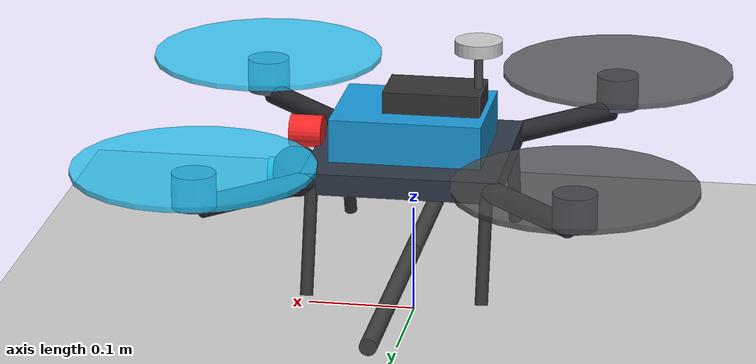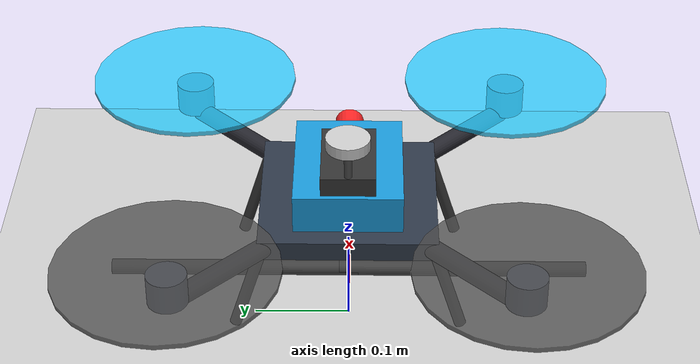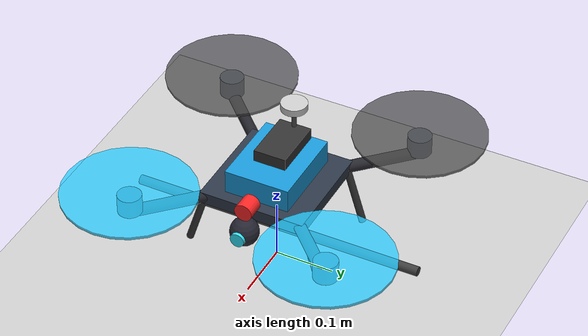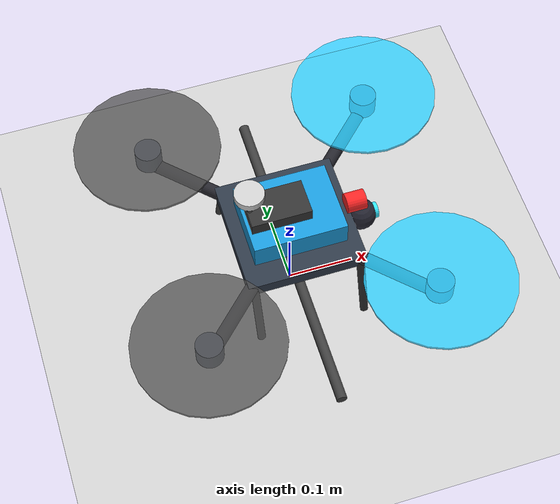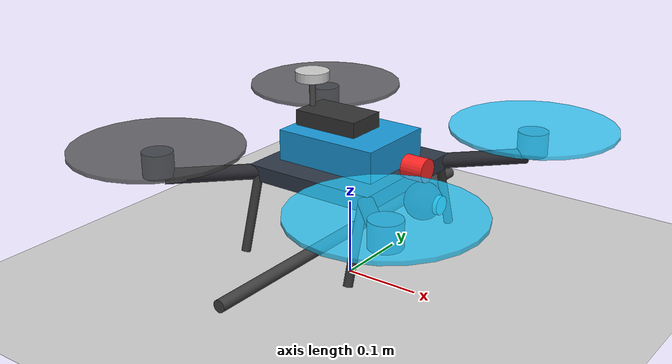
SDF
<?xml version="1.0" ?>
<sdf version="1.6">
  <world name="quadrotor_test_world">
    <!-- Scene lighting -->
    <light type="directional" name="sun">
      <cast_shadows>true</cast_shadows>
      <pose>0 0 10 0 0 0</pose>
      <diffuse>0.8 0.8 0.8 1</diffuse>
      <specular>0.2 0.2 0.2 1</specular>
      <attenuation>
        <range>1000</range>
        <constant>0.9</constant>
        <linear>0.01</linear>
        <quadratic>0.001</quadratic>
      </attenuation>
      <direction>-0.5 0.1 -0.9</direction>
    </light>

    <!-- Ground Plane -->
    <model name="ground_plane">
      <static>true</static>
      <link name="link">
        <collision name="collision">
          <geometry>
            <plane>
              <normal>0 0 1</normal>
              <size>100 100</size>
            </plane>
          </geometry>
          <surface>
            <friction>
              <ode>
                <mu>100</mu>
                <mu2>50</mu2>
              </ode>
            </friction>
          </surface>
        </collision>
        <visual name="visual">
          <cast_shadows>false</cast_shadows>
          <geometry>
            <plane>
              <normal>0 0 1</normal>
              <size>100 100</size>
            </plane>
          </geometry>
          <material>
            <script>
              <uri>file://media/materials/scripts/gazebo.material</uri>
              <name>Gazebo/Grey</name>
            </script>
          </material>
        </visual>
      </link>
    </model>

    <!-- Physics Configuration -->
    <physics type="ode">
      <max_step_size>0.001</max_step_size>
      <real_time_factor>1.0</real_time_factor>
      <real_time_update_rate>1000</real_time_update_rate>
      <gravity>0 0 -9.81</gravity>
    </physics>

    <!-- Airfield / Simulation Coordinates: Lat 16.5062, Lon 80.6480, Alt 25m -->
    <spherical_coordinates>
      <surface_model>EARTH_WGS84</surface_model>
      <latitude_deg>16.5062</latitude_deg>
      <longitude_deg>80.6480</longitude_deg>
      <elevation>25.0</elevation>
      <heading_deg>0</heading_deg>
    </spherical_coordinates>

    <!-- Embedded High-Fidelity 3D Quadrotor Model -->
    <model name="quadrotor">
      <pose>0 0 0.15 0 0 0</pose>
      <static>false</static>

      <!-- Main Drone Link -->
      <link name="base_link">
        <inertial>
          <mass>1.45</mass>
          <inertia>
            <ixx>0.025</ixx>
            <ixy>0</ixy>
            <ixz>0</ixz>
            <iyy>0.025</iyy>
            <iyz>0</iyz>
            <izz>0.045</izz>
          </inertia>
        </inertial>

        <!-- Collision Hull: Center Body + Landing Skids -->
        <collision name="body_collision">
          <pose>0 0 0 0 0 0</pose>
          <geometry>
            <box>
              <size>0.24 0.24 0.08</size>
            </box>
          </geometry>
        </collision>

        <collision name="landing_gear_collision">
          <pose>0 0 -0.08 0 0 0</pose>
          <geometry>
            <box>
              <size>0.28 0.28 0.04</size>
            </box>
          </geometry>
        </collision>

        <!-- 1. Central Fuselage / Lower Chassis Plate -->
        <visual name="chassis_plate_visual">
          <pose>0 0 0 0 0 0</pose>
          <geometry>
            <box>
              <size>0.18 0.18 0.02</size>
            </box>
          </geometry>
          <material>
            <ambient>0.12 0.15 0.2 1</ambient>
            <diffuse>0.18 0.22 0.28 1</diffuse>
            <specular>0.3 0.3 0.3 1</specular>
          </material>
        </visual>

        <!-- 2. Avionics Canopy / Top Shell -->
        <visual name="canopy_visual">
          <pose>0 0 0.03 0 0 0</pose>
          <geometry>
            <box>
              <size>0.14 0.11 0.04</size>
            </box>
          </geometry>
          <material>
            <ambient>0.08 0.5 0.7 1</ambient>
            <diffuse>0.1 0.6 0.85 1</diffuse>
            <specular>0.5 0.5 0.5 1</specular>
          </material>
        </visual>

        <!-- 3. Battery Pack on Aft -->
        <visual name="battery_visual">
          <pose>-0.02 0 0.055 0 0 0</pose>
          <geometry>
            <box>
              <size>0.09 0.055 0.03</size>
            </box>
          </geometry>
          <material>
            <ambient>0.1 0.1 0.1 1</ambient>
            <diffuse>0.2 0.2 0.2 1</diffuse>
          </material>
        </visual>

        <!-- 4. Front Nose Beacon (Forward Orientation Indicator) -->
        <visual name="nose_cone_visual">
          <pose>0.10 0 0.02 0 1.5708 0</pose>
          <geometry>
            <cylinder>
              <radius>0.015</radius>
              <length>0.03</length>
            </cylinder>
          </geometry>
          <material>
            <ambient>0.9 0.1 0.1 1</ambient>
            <diffuse>1.0 0.15 0.15 1</diffuse>
          </material>
        </visual>

        <!-- 5. GPS Antenna Mast and Puck -->
        <visual name="gps_mast_visual">
          <pose>-0.06 0 0.08 0 0 0</pose>
          <geometry>
            <cylinder>
              <radius>0.004</radius>
              <length>0.06</length>
            </cylinder>
          </geometry>
          <material>
            <ambient>0.2 0.2 0.2 1</ambient>
            <diffuse>0.3 0.3 0.3 1</diffuse>
          </material>
        </visual>

        <visual name="gps_puck_visual">
          <pose>-0.06 0 0.11 0 0 0</pose>
          <geometry>
            <cylinder>
              <radius>0.022</radius>
              <length>0.012</length>
            </cylinder>
          </geometry>
          <material>
            <ambient>0.1 0.1 0.1 1</ambient>
            <diffuse>0.8 0.8 0.8 1</diffuse>
          </material>
        </visual>

        <!-- 6. Four Carbon Fiber Booms (X Configuration) -->
        <!-- Arm 1: Front-Right (+X, -Y) -->
        <visual name="arm_fr_visual">
          <pose>0.08 -0.08 0 0 1.5708 -0.7854</pose>
          <geometry>
            <cylinder>
              <radius>0.01</radius>
              <length>0.24</length>
            </cylinder>
          </geometry>
          <material>
            <ambient>0.1 0.1 0.12 1</ambient>
            <diffuse>0.15 0.15 0.18 1</diffuse>
          </material>
        </visual>

        <!-- Arm 2: Front-Left (+X, +Y) -->
        <visual name="arm_fl_visual">
          <pose>0.08 0.08 0 0 1.5708 0.7854</pose>
          <geometry>
            <cylinder>
              <radius>0.01</radius>
              <length>0.24</length>
            </cylinder>
          </geometry>
          <material>
            <ambient>0.1 0.1 0.12 1</ambient>
            <diffuse>0.15 0.15 0.18 1</diffuse>
          </material>
        </visual>

        <!-- Arm 3: Rear-Left (-X, +Y) -->
        <visual name="arm_rl_visual">
          <pose>-0.08 0.08 0 0 1.5708 2.3562</pose>
          <geometry>
            <cylinder>
              <radius>0.01</radius>
              <length>0.24</length>
            </cylinder>
          </geometry>
          <material>
            <ambient>0.1 0.1 0.12 1</ambient>
            <diffuse>0.15 0.15 0.18 1</diffuse>
          </material>
        </visual>

        <!-- Arm 4: Rear-Right (-X, -Y) -->
        <visual name="arm_rr_visual">
          <pose>-0.08 -0.08 0 0 1.5708 -2.3562</pose>
          <geometry>
            <cylinder>
              <radius>0.01</radius>
              <length>0.24</length>
            </cylinder>
          </geometry>
          <material>
            <ambient>0.1 0.1 0.12 1</ambient>
            <diffuse>0.15 0.15 0.18 1</diffuse>
          </material>
        </visual>

        <!-- 7. Four Brushless Motor Pods -->
        <!-- Motor 1 (FR) -->
        <visual name="motor_fr_visual">
          <pose>0.17 -0.17 0.018 0 0 0</pose>
          <geometry>
            <cylinder>
              <radius>0.02</radius>
              <length>0.032</length>
            </cylinder>
          </geometry>
          <material>
            <ambient>0.2 0.25 0.3 1</ambient>
            <diffuse>0.3 0.35 0.45 1</diffuse>
          </material>
        </visual>

        <!-- Motor 2 (FL) -->
        <visual name="motor_fl_visual">
          <pose>0.17 0.17 0.018 0 0 0</pose>
          <geometry>
            <cylinder>
              <radius>0.02</radius>
              <length>0.032</length>
            </cylinder>
          </geometry>
          <material>
            <ambient>0.2 0.25 0.3 1</ambient>
            <diffuse>0.3 0.35 0.45 1</diffuse>
          </material>
        </visual>

        <!-- Motor 3 (RL) -->
        <visual name="motor_rl_visual">
          <pose>-0.17 0.17 0.018 0 0 0</pose>
          <geometry>
            <cylinder>
              <radius>0.02</radius>
              <length>0.032</length>
            </cylinder>
          </geometry>
          <material>
            <ambient>0.2 0.25 0.3 1</ambient>
            <diffuse>0.3 0.35 0.45 1</diffuse>
          </material>
        </visual>

        <!-- Motor 4 (RR) -->
        <visual name="motor_rr_visual">
          <pose>-0.17 -0.17 0.018 0 0 0</pose>
          <geometry>
            <cylinder>
              <radius>0.02</radius>
              <length>0.032</length>
            </cylinder>
          </geometry>
          <material>
            <ambient>0.2 0.25 0.3 1</ambient>
            <diffuse>0.3 0.35 0.45 1</diffuse>
          </material>
        </visual>

        <!-- 8. Four Rotor / Propeller Discs -->
        <!-- Propeller 1 (FR - Orange/Cyan front) -->
        <visual name="prop_fr_visual">
          <pose>0.17 -0.17 0.038 0 0 0</pose>
          <geometry>
            <cylinder>
              <radius>0.11</radius>
              <length>0.005</length>
            </cylinder>
          </geometry>
          <material>
            <ambient>0.1 0.7 0.9 0.7</ambient>
            <diffuse>0.15 0.8 1.0 0.8</diffuse>
          </material>
        </visual>

        <!-- Propeller 2 (FL - Orange/Cyan front) -->
        <visual name="prop_fl_visual">
          <pose>0.17 0.17 0.038 0 0 0</pose>
          <geometry>
            <cylinder>
              <radius>0.11</radius>
              <length>0.005</length>
            </cylinder>
          </geometry>
          <material>
            <ambient>0.1 0.7 0.9 0.7</ambient>
            <diffuse>0.15 0.8 1.0 0.8</diffuse>
          </material>
        </visual>

        <!-- Propeller 3 (RL - Dark Aft) -->
        <visual name="prop_rl_visual">
          <pose>-0.17 0.17 0.038 0 0 0</pose>
          <geometry>
            <cylinder>
              <radius>0.11</radius>
              <length>0.005</length>
            </cylinder>
          </geometry>
          <material>
            <ambient>0.2 0.2 0.2 0.7</ambient>
            <diffuse>0.3 0.3 0.3 0.8</diffuse>
          </material>
        </visual>

        <!-- Propeller 4 (RR - Dark Aft) -->
        <visual name="prop_rr_visual">
          <pose>-0.17 -0.17 0.038 0 0 0</pose>
          <geometry>
            <cylinder>
              <radius>0.11</radius>
              <length>0.005</length>
            </cylinder>
          </geometry>
          <material>
            <ambient>0.2 0.2 0.2 0.7</ambient>
            <diffuse>0.3 0.3 0.3 0.8</diffuse>
          </material>
        </visual>

        <!-- 9. Landing Gear Legs & Skids -->
        <!-- Left Skid Leg 1 -->
        <visual name="leg_fl_visual">
          <pose>0.08 0.10 -0.05 0.3 0 0</pose>
          <geometry>
            <cylinder>
              <radius>0.006</radius>
              <length>0.10</length>
            </cylinder>
          </geometry>
          <material>
            <ambient>0.1 0.1 0.1 1</ambient>
            <diffuse>0.2 0.2 0.2 1</diffuse>
          </material>
        </visual>

        <!-- Left Skid Leg 2 -->
        <visual name="leg_rl_visual">
          <pose>-0.08 0.10 -0.05 0.3 0 0</pose>
          <geometry>
            <cylinder>
              <radius>0.006</radius>
              <length>0.10</length>
            </cylinder>
          </geometry>
          <material>
            <ambient>0.1 0.1 0.1 1</ambient>
            <diffuse>0.2 0.2 0.2 1</diffuse>
          </material>
        </visual>

        <!-- Left Horizontal Skid Tube -->
        <visual name="skid_left_visual">
          <pose>0 0.12 -0.09 1.5708 0 0</pose>
          <geometry>
            <cylinder>
              <radius>0.008</radius>
              <length>0.26</length>
            </cylinder>
          </geometry>
          <material>
            <ambient>0.15 0.15 0.15 1</ambient>
            <diffuse>0.25 0.25 0.25 1</diffuse>
          </material>
        </visual>

        <!-- Right Skid Leg 1 -->
        <visual name="leg_fr_visual">
          <pose>0.08 -0.10 -0.05 -0.3 0 0</pose>
          <geometry>
            <cylinder>
              <radius>0.006</radius>
              <length>0.10</length>
            </cylinder>
          </geometry>
          <material>
            <ambient>0.1 0.1 0.1 1</ambient>
            <diffuse>0.2 0.2 0.2 1</diffuse>
          </material>
        </visual>

        <!-- Right Skid Leg 2 -->
        <visual name="leg_rr_visual">
          <pose>-0.08 -0.10 -0.05 -0.3 0 0</pose>
          <geometry>
            <cylinder>
              <radius>0.006</radius>
              <length>0.10</length>
            </cylinder>
          </geometry>
          <material>
            <ambient>0.1 0.1 0.1 1</ambient>
            <diffuse>0.2 0.2 0.2 1</diffuse>
          </material>
        </visual>

        <!-- Right Horizontal Skid Tube -->
        <visual name="skid_right_visual">
          <pose>0 -0.12 -0.09 1.5708 0 0</pose>
          <geometry>
            <cylinder>
              <radius>0.008</radius>
              <length>0.26</length>
            </cylinder>
          </geometry>
          <material>
            <ambient>0.15 0.15 0.15 1</ambient>
            <diffuse>0.25 0.25 0.25 1</diffuse>
          </material>
        </visual>

        <!-- 10. Front Camera Gimbal Pod Housing -->
        <visual name="camera_pod_visual">
          <pose>0.11 0 -0.02 0 0 0</pose>
          <geometry>
            <sphere>
              <radius>0.024</radius>
            </sphere>
          </geometry>
          <material>
            <ambient>0.1 0.1 0.15 1</ambient>
            <diffuse>0.15 0.15 0.2 1</diffuse>
          </material>
        </visual>

        <visual name="camera_lens_visual">
          <pose>0.132 0 -0.02 0 1.5708 0</pose>
          <geometry>
            <cylinder>
              <radius>0.012</radius>
              <length>0.008</length>
            </cylinder>
          </geometry>
          <material>
            <ambient>0.1 0.8 1.0 1</ambient>
            <diffuse>0.2 0.9 1.0 1</diffuse>
          </material>
        </visual>

        <!-- ================= SENSORS ================= -->
        <!-- 1. IMU Sensor -->
        <sensor name="imu_sensor" type="imu">
          <always_on>true</always_on>
          <update_rate>100</update_rate>
          <visualize>true</visualize>
          <topic>/imu/data</topic>
          <plugin name="imu_plugin" filename="libgazebo_ros_imu_sensor.so">
            <ros>
              <namespace>/</namespace>
              <remapping>~/out:=/imu/data</remapping>
            </ros>
            <initial_orientation_as_reference>false</initial_orientation_as_reference>
          </plugin>
        </sensor>

        <!-- 2. NavSat / GPS Sensor -->
        <sensor name="gps_sensor" type="gps">
          <always_on>true</always_on>
          <update_rate>10</update_rate>
          <topic>/gps/fix</topic>
          <plugin name="gps_plugin" filename="libgazebo_ros_gps_sensor.so">
            <ros>
              <namespace>/</namespace>
              <remapping>~/out:=/gps/fix</remapping>
            </ros>
          </plugin>
        </sensor>

        <!-- 3. FPV Camera Sensor -->
        <sensor name="fpv_camera" type="camera">
          <pose>0.135 0 -0.02 0 0 0</pose>
          <camera>
            <horizontal_fov>1.3962634</horizontal_fov>
            <image>
              <width>640</width>
              <height>480</height>
              <format>R8G8B8</format>
            </image>
            <clip>
              <near>0.05</near>
              <far>500</far>
            </clip>
          </camera>
          <always_on>true</always_on>
          <update_rate>30</update_rate>
          <plugin name="camera_controller" filename="libgazebo_ros_camera.so">
            <ros>
              <namespace>/</namespace>
              <remapping>image_raw:=/camera/image_raw</remapping>
            </ros>
            <camera_name>camera</camera_name>
            <frame_name>camera_link</frame_name>
          </plugin>
        </sensor>
      </link>

      <!-- ================= 3D QUADROTOR FLIGHT CONTROLLER PLUGIN ================= -->
      <!-- Custom 3D flight controller supporting X, Y, Z, Yaw -->
      <plugin name="quadrotor_flight_controller" filename="/mnt/k/Drone/simulation/lib/libgazebo_ros_quadrotor_controller.so">
        <ros>
          <namespace>/</namespace>
          <remapping>cmd_vel:=/cmd_vel</remapping>
          <remapping>odom:=/odom</remapping>
        </ros>
      </plugin>
    </model>
  </world>
</sdf>
